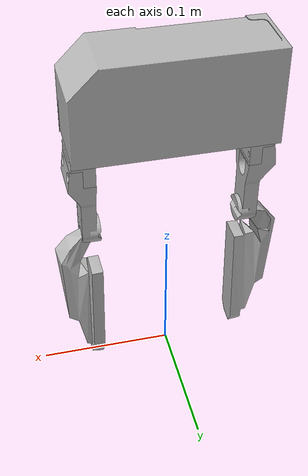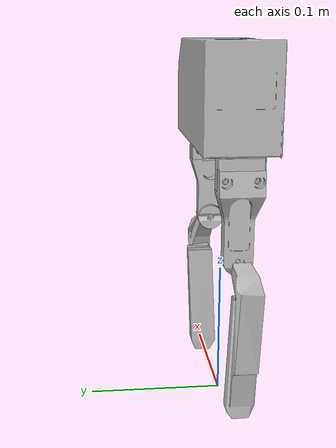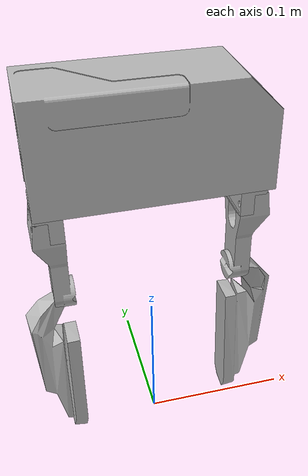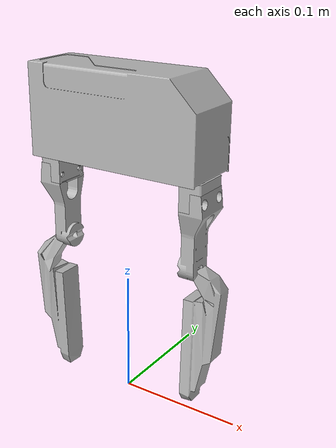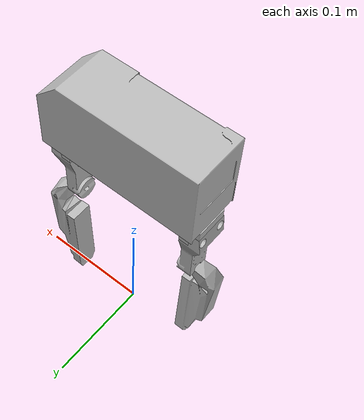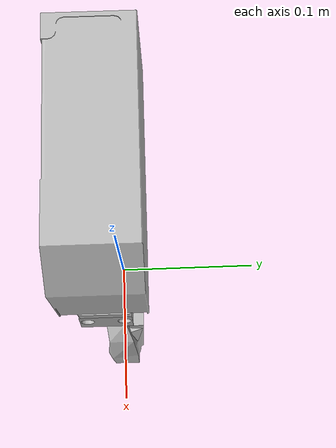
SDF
<?xml version="1.0" ?>
<sdf version='1.6'>
  <world name='default'>
  <model name='wsg50_with_gripper'>
    <pose frame=''>0 0 0.27 3.14 0 0</pose>

    <link name='world'>
	</link>

    <joint name='base_joint' type='prismatic'>
      <parent>world</parent>
      <child>base_link</child>
      <axis>
        <xyz>0 0 1</xyz>
        <limit>
          <lower>-0.5</lower>
          <upper>10</upper>
          <effort>1</effort>
          <velocity>1</velocity>
        </limit>
        <dynamics>
          <damping>100</damping>
          <friction>100</friction>
          <spring_reference>0</spring_reference>
          <spring_stiffness>0</spring_stiffness>
        </dynamics>
      </axis>
    </joint>

    <link name='base_link'>
      <pose frame=''>0 0 0 0 -0 0</pose>
      <inertial>
        <pose frame=''>0 0 0 0 -0 0</pose>
        <mass>1.2</mass>
        <inertia>
          <ixx>1</ixx>
          <ixy>0</ixy>
          <ixz>0</ixz>
          <iyy>1</iyy>
          <iyz>0</iyz>
          <izz>1</izz>
        </inertia>
      </inertial>
      <collision name='base_link_collision'>
        <pose frame=''>0 0 0 0 -0 0</pose>
        <geometry>
		<box>
              <size>0.2 0.05 0.05 </size>
            </box>
        </geometry>
      </collision>
      <visual name='base_link_visual'>
        <pose frame=''>0 0 0 0 -0 0</pose>
        <geometry>
          <mesh>
            <scale>1 1 1</scale>
            <uri>meshes/WSG50_110.stl</uri>
          </mesh>
        </geometry>
        <material>

        </material>
      </visual>
      <gravity>1</gravity>
      <velocity_decay/>
      <self_collide>0</self_collide>
    </link>

    <link name='gripper_left'>
      <pose frame=''>-0.055 0 0 0 -0 0</pose>
      <inertial>
        <pose frame=''>0 0 0.0115 0 -0 0</pose>
        <mass>0.2</mass>
        <inertia>
          <ixx>0.1</ixx>
          <ixy>0</ixy>
          <ixz>0</ixz>
          <iyy>0.1</iyy>
          <iyz>0</iyz>
          <izz>0.1</izz>
        </inertia>
      </inertial>

      <collision name='gripper_left_collision'>
        <pose frame=''>0 0 0 0 -0 0</pose>
        <geometry>
          <mesh>
            <scale>0.001 0.001 0.001</scale>
            <uri>meshes/GUIDE_WSG50_110.stl</uri>
          </mesh>
        </geometry>
      </collision>
      <collision name='gripper_left_fixed_joint_lump__finger_left_collision_1'>
        <pose frame=''>0 0 0.023 0 -0 0</pose>
        <geometry>
          <mesh>
            <scale>0.001 0.001 0.001</scale>
            <uri>meshes/WSG-FMF.stl</uri>
          </mesh>
        </geometry>
      </collision>

      <visual name='gripper_left_visual'>
        <pose frame=''>0 0 0 0 -0 0</pose>
        <geometry>
          <mesh>
            <scale>0.001 0.001 0.001</scale>
            <uri>meshes/GUIDE_WSG50_110.stl</uri>
          </mesh>
        </geometry>
      </visual>
      <visual name='gripper_left_fixed_joint_lump__finger_left_visual_1'>
        <pose frame=''>0 0 0.023 0 -0 0</pose>
        <geometry>
          <mesh>
            <scale>0.001 0.001 0.001</scale>
            <uri>meshes/WSG-FMF.stl</uri>
          </mesh>
        </geometry>
      </visual>

    </link>
    <joint name='base_joint_gripper_left' type='prismatic'>
      <child>gripper_left</child>
      <parent>base_link</parent>
      <axis>
        <xyz>1 0 0</xyz>
        <limit>
          <lower>-0.001</lower>
          <upper>0.055</upper>
          <effort>1</effort>
          <velocity>1</velocity>
        </limit>
        <dynamics>
          <damping>100</damping>
          <friction>100</friction>
          <spring_reference>0</spring_reference>
          <spring_stiffness>0</spring_stiffness>
        </dynamics>
      </axis>
    </joint>

    <link name='gripper_right'>
      <pose frame=''>0.055 0 0 0 -0 3.14159</pose>
      <inertial>
        <pose frame=''>0 0 0.0115 0 -0 0</pose>
        <mass>0.2</mass>
        <inertia>
          <ixx>0.1</ixx>
          <ixy>0</ixy>
          <ixz>0</ixz>
          <iyy>0.1</iyy>
          <iyz>0</iyz>
          <izz>0.1</izz>
        </inertia>
      </inertial>

      <collision name='gripper_right_collision'>
        <pose frame=''>0 0 0 0 -0 0</pose>
        <geometry>
          <mesh>
            <scale>0.001 0.001 0.001</scale>
            <uri>meshes/GUIDE_WSG50_110.stl</uri>
          </mesh>
        </geometry>
      </collision>
      <collision name='gripper_right_fixed_joint_lump__finger_right_collision_1'>
        <pose frame=''>0 0 0.023 0 -0 0</pose>
        <geometry>
          <mesh>
            <scale>0.001 0.001 0.001</scale>
            <uri>meshes/WSG-FMF.stl</uri>
          </mesh>
        </geometry>
      </collision>

      <visual name='gripper_right_visual'>
        <pose frame=''>0 0 0 0 -0 0</pose>
        <geometry>
          <mesh>
            <scale>0.001 0.001 0.001</scale>
            <uri>meshes/GUIDE_WSG50_110.stl</uri>
          </mesh>
        </geometry>
      </visual>
      <visual name='gripper_right_fixed_joint_lump__finger_right_visual_1'>
        <pose frame=''>0 0 0.023 0 -0 0</pose>
        <geometry>
          <mesh>
            <scale>0.001 0.001 0.001</scale>
            <uri>meshes/WSG-FMF.stl</uri>
          </mesh>
        </geometry>
      </visual>
    </link>

    <joint name='base_joint_gripper_right' type='prismatic'>
      <child>gripper_right</child>
      <parent>base_link</parent>
      <axis>
        <xyz>-1 0 0</xyz>
        <limit>
          <lower>-0.055</lower>
          <upper>0.001</upper>
          <effort>1</effort>
          <velocity>1</velocity>
        </limit>
        <dynamics>
          <damping>100</damping>
          <friction>100</friction>
          <spring_reference>0</spring_reference>
          <spring_stiffness>0</spring_stiffness>
        </dynamics>
      </axis>
    </joint>

    <link name='finger_right'>
      <contact>
        <lateral_friction>1.0</lateral_friction>
        <spinning_friction>1.5</spinning_friction>
      </contact>
      <pose frame=''>0.062 0 0.145 0 0 1.5708</pose>
      <inertial>
        <mass>0.2</mass>
        <inertia>
          <ixx>0.1</ixx>
          <ixy>0</ixy>
          <ixz>0</ixz>
          <iyy>0.1</iyy>
          <iyz>0</iyz>
          <izz>0.1</izz>
        </inertia>
      </inertial>

      <collision name='finger_right_collision'>
	<pose frame=''>0 0 0.042 0 0 0 </pose>
	<geometry>
       <box>
              <size>0.02 0.02 0.15 </size>
            </box>

        </geometry>
      </collision>

      <visual name='finger_right_visual'>
        <pose frame=''>0 0 0 0 0 0 </pose>
        <geometry>
          <mesh>
            <scale>1 1 1 </scale>
            <uri>meshes/l_gripper_tip_scaled.stl</uri>
          </mesh>
        </geometry>
      </visual>
    </link>

    <joint name='gripper_finger_right' type='fixed'>
      <parent>gripper_right</parent>
      <child>finger_right</child>
    </joint>

    <link name='finger_left'>
      <contact>
        <lateral_friction>1.0</lateral_friction>
        <spinning_friction>1.5</spinning_friction>
      </contact>
      <pose frame=''>-0.062 0 0.145 0 0 4.71239</pose>
      <inertial>
        <mass>0.2</mass>
        <inertia>
          <ixx>0.1</ixx>
          <ixy>0</ixy>
          <ixz>0</ixz>
          <iyy>0.1</iyy>
          <iyz>0</iyz>
          <izz>0.1</izz>
        </inertia>
      </inertial>

      <collision name='finger_left_collision'>
        <pose frame=''>0 0 0.042 0 0 0 </pose>
        <geometry>
               <box>
              <size>0.02 0.02 0.15 </size>
            </box>

        </geometry>
      </collision>

      <visual name='finger_left_visual'>
        <pose frame=''>0 0 0 0 0 0 </pose>
        <geometry>
          <mesh>
            <scale>1 1 1 </scale>
            <uri>meshes/l_gripper_tip_scaled.stl</uri>
          </mesh>
        </geometry>
      </visual>
    </link>

    <joint name='gripper_finger_left' type='fixed'>
      <parent>gripper_left</parent>
      <child>finger_left</child>
    </joint>
  </model>
</world>
</sdf>
